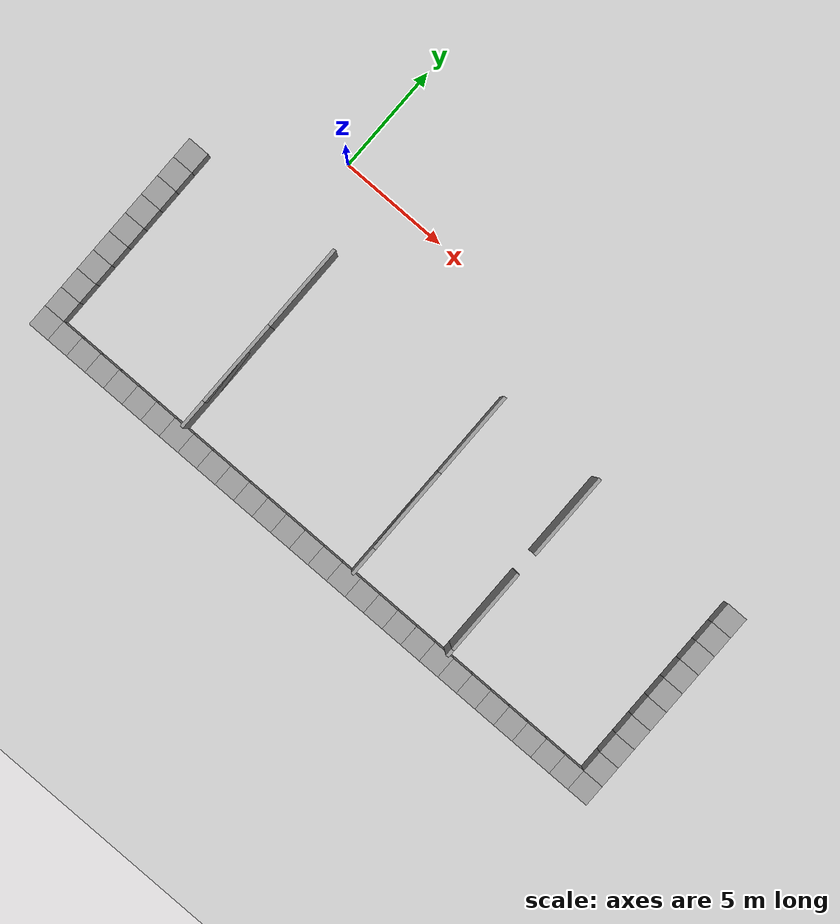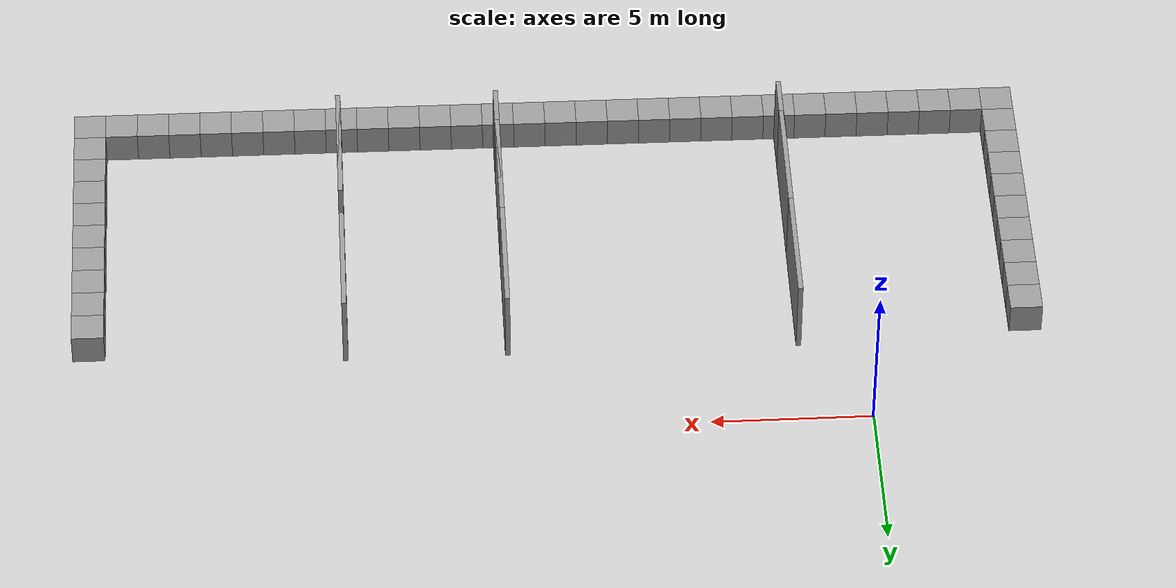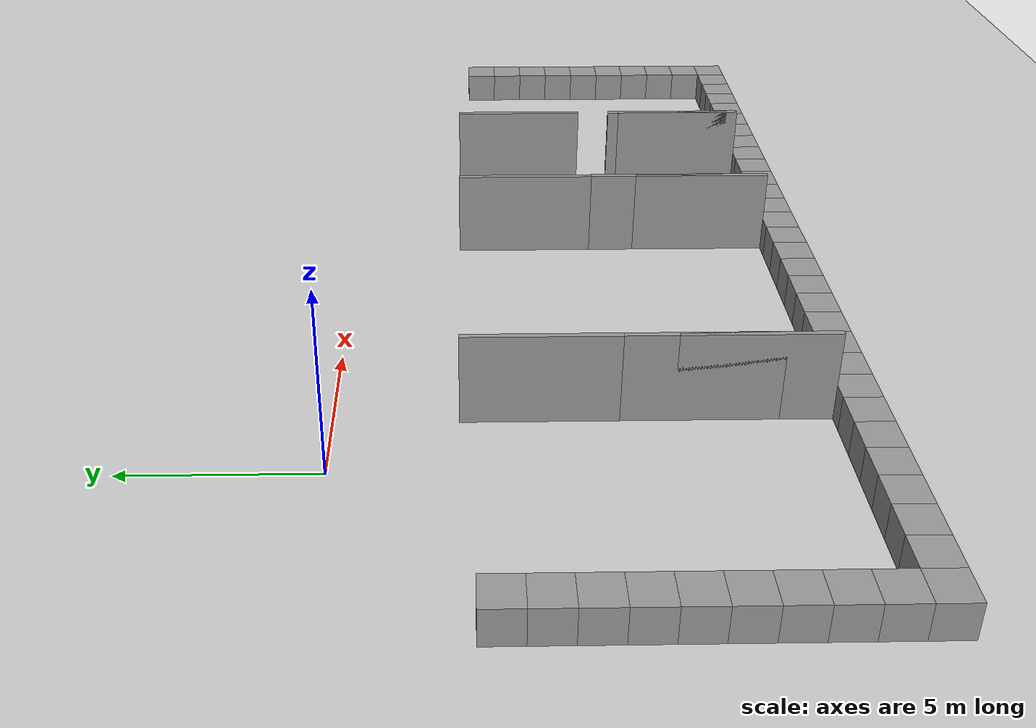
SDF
<sdf version="1.6">
 <world name="default">
  <model name="ground_plane">
   <static>1</static>
   <link name="link">
    <collision name="collision">
     <geometry><plane><normal>0 0 1</normal><size>100 100</size></plane></geometry>
     <surface><friction><ode><mu>100</mu><mu2>50</mu2></ode></friction></surface>
    </collision>
    <visual name="visual">
     <cast_shadows>0</cast_shadows>
     <geometry><plane><normal>0 0 1</normal><size>100 100</size></plane></geometry>
     <material>
      <script><uri>file://media/materials/scripts/gazebo.material</uri><name>Gazebo/Grey</name></script>
     </material>
    </visual>
    <velocity_decay><linear>0</linear><angular>0</angular></velocity_decay>
   </link>
  </model>
  <model name="unit_box_206">
   <pose>24 -3.99999 0.5 0 0 -1e-06</pose>
   <static>1</static>
   <link name="link">
    <inertial>
     <mass>1</mass>
     <inertia><ixx>1</ixx><ixy>0</ixy><ixz>0</ixz><iyy>1</iyy><iyz>0</iyz><izz>1</izz></inertia>
    </inertial>
    <collision name="collision"><geometry><box><size>1 1 1</size></box></geometry></collision>
    <visual name="visual">
     <geometry><box><size>1 1 1</size></box></geometry>
     <material>
      <script><uri>file://media/materials/scripts/gazebo.material</uri><name>Gazebo/Grey</name></script>
     </material>
    </visual>
    <velocity_decay><linear>0</linear><angular>0</angular></velocity_decay>
   </link>
   <static>1</static>
  </model>
  <model name="unit_box_207">
   <pose>24 -4.99999 0.5 0 0 -1e-06</pose>
   <static>1</static>
   <link name="link">
    <inertial>
     <mass>1</mass>
     <inertia><ixx>1</ixx><ixy>0</ixy><ixz>0</ixz><iyy>1</iyy><iyz>0</iyz><izz>1</izz></inertia>
    </inertial>
    <collision name="collision"><geometry><box><size>1 1 1</size></box></geometry></collision>
    <visual name="visual">
     <geometry><box><size>1 1 1</size></box></geometry>
     <material>
      <script><uri>file://media/materials/scripts/gazebo.material</uri><name>Gazebo/Grey</name></script>
     </material>
    </visual>
    <velocity_decay><linear>0</linear><angular>0</angular></velocity_decay>
   </link>
   <static>1</static>
  </model>
  <model name="unit_box_208">
   <pose>24 -6 0.5 0 0 -2e-06</pose>
   <static>1</static>
   <link name="link">
    <inertial>
     <mass>1</mass>
     <inertia><ixx>1</ixx><ixy>0</ixy><ixz>0</ixz><iyy>1</iyy><iyz>0</iyz><izz>1</izz></inertia>
    </inertial>
    <collision name="collision"><geometry><box><size>1 1 1</size></box></geometry></collision>
    <visual name="visual">
     <geometry><box><size>1 1 1</size></box></geometry>
     <material>
      <script><uri>file://media/materials/scripts/gazebo.material</uri><name>Gazebo/Grey</name></script>
     </material>
    </visual>
    <velocity_decay><linear>0</linear><angular>0</angular></velocity_decay>
   </link>
   <static>1</static>
  </model>
  <model name="unit_box_215">
   <pose>24 -7 0.5 0 0 -2e-06</pose>
   <static>1</static>
   <link name="link">
    <inertial>
     <mass>1</mass>
     <inertia><ixx>1</ixx><ixy>0</ixy><ixz>0</ixz><iyy>1</iyy><iyz>0</iyz><izz>1</izz></inertia>
    </inertial>
    <collision name="collision"><geometry><box><size>1 1 1</size></box></geometry></collision>
    <visual name="visual">
     <geometry><box><size>1 1 1</size></box></geometry>
     <material>
      <script><uri>file://media/materials/scripts/gazebo.material</uri><name>Gazebo/Grey</name></script>
     </material>
    </visual>
    <velocity_decay><linear>0</linear><angular>0</angular></velocity_decay>
   </link>
   <static>1</static>
  </model>
  <model name="unit_box_216">
   <pose>24 -8 0.5 0 0 -3e-06</pose>
   <static>1</static>
   <link name="link">
    <inertial>
     <mass>1</mass>
     <inertia><ixx>1</ixx><ixy>0</ixy><ixz>0</ixz><iyy>1</iyy><iyz>0</iyz><izz>1</izz></inertia>
    </inertial>
    <collision name="collision"><geometry><box><size>1 1 1</size></box></geometry></collision>
    <visual name="visual">
     <geometry><box><size>1 1 1</size></box></geometry>
     <material>
      <script><uri>file://media/materials/scripts/gazebo.material</uri><name>Gazebo/Grey</name></script>
     </material>
    </visual>
    <velocity_decay><linear>0</linear><angular>0</angular></velocity_decay>
   </link>
   <static>1</static>
  </model>
  <model name="unit_box_241">
   <pose>-5 -4 0.5 0 0 0</pose>
   <static>1</static>
   <link name="link">
    <inertial>
     <mass>1</mass>
     <inertia><ixx>1</ixx><ixy>0</ixy><ixz>0</ixz><iyy>1</iyy><iyz>0</iyz><izz>1</izz></inertia>
    </inertial>
    <collision name="collision"><geometry><box><size>1 1 1</size></box></geometry></collision>
    <visual name="visual">
     <geometry><box><size>1 1 1</size></box></geometry>
     <material>
      <script><uri>file://media/materials/scripts/gazebo.material</uri><name>Gazebo/Grey</name></script>
     </material>
    </visual>
    <velocity_decay><linear>0</linear><angular>0</angular></velocity_decay>
   </link>
   <static>1</static>
  </model>
  <model name="unit_box_251">
   <pose>-4.00002 -13 0.5 0 -1e-06 -1.2e-05</pose>
   <static>1</static>
   <link name="link">
    <inertial>
     <mass>1</mass>
     <inertia><ixx>1</ixx><ixy>0</ixy><ixz>0</ixz><iyy>1</iyy><iyz>0</iyz><izz>1</izz></inertia>
    </inertial>
    <collision name="collision"><geometry><box><size>1 1 1</size></box></geometry></collision>
    <visual name="visual">
     <geometry><box><size>1 1 1</size></box></geometry>
     <material>
      <script><uri>file://media/materials/scripts/gazebo.material</uri><name>Gazebo/Grey</name></script>
     </material>
    </visual>
    <velocity_decay><linear>0</linear><angular>0</angular></velocity_decay>
   </link>
   <static>1</static>
  </model>
  <model name="unit_box_252">
   <pose>-3.00002 -13 0.5 0 0 -1.1e-05</pose>
   <static>1</static>
   <link name="link">
    <inertial>
     <mass>1</mass>
     <inertia><ixx>1</ixx><ixy>0</ixy><ixz>0</ixz><iyy>1</iyy><iyz>0</iyz><izz>1</izz></inertia>
    </inertial>
    <collision name="collision"><geometry><box><size>1 1 1</size></box></geometry></collision>
    <visual name="visual">
     <geometry><box><size>1 1 1</size></box></geometry>
     <material>
      <script><uri>file://media/materials/scripts/gazebo.material</uri><name>Gazebo/Grey</name></script>
     </material>
    </visual>
    <velocity_decay><linear>0</linear><angular>0</angular></velocity_decay>
   </link>
   <static>1</static>
  </model>
  <model name="unit_box_253">
   <pose>-2.00001 -13 0.5 0 0 -1e-05</pose>
   <static>1</static>
   <link name="link">
    <inertial>
     <mass>1</mass>
     <inertia><ixx>1</ixx><ixy>0</ixy><ixz>0</ixz><iyy>1</iyy><iyz>0</iyz><izz>1</izz></inertia>
    </inertial>
    <collision name="collision"><geometry><box><size>1 1 1</size></box></geometry></collision>
    <visual name="visual">
     <geometry><box><size>1 1 1</size></box></geometry>
     <material>
      <script><uri>file://media/materials/scripts/gazebo.material</uri><name>Gazebo/Grey</name></script>
     </material>
    </visual>
    <velocity_decay><linear>0</linear><angular>0</angular></velocity_decay>
   </link>
   <static>1</static>
  </model>
  <model name="unit_box_254">
   <pose>-1.00001 -13 0.5 0 0 -1e-05</pose>
   <static>1</static>
   <link name="link">
    <inertial>
     <mass>1</mass>
     <inertia><ixx>1</ixx><ixy>0</ixy><ixz>0</ixz><iyy>1</iyy><iyz>0</iyz><izz>1</izz></inertia>
    </inertial>
    <collision name="collision"><geometry><box><size>1 1 1</size></box></geometry></collision>
    <visual name="visual">
     <geometry><box><size>1 1 1</size></box></geometry>
     <material>
      <script><uri>file://media/materials/scripts/gazebo.material</uri><name>Gazebo/Grey</name></script>
     </material>
    </visual>
    <velocity_decay><linear>0</linear><angular>0</angular></velocity_decay>
   </link>
   <static>1</static>
  </model>
  <model name="unit_box_255">
   <pose>-1.2e-05 -12.9999 0.5 0 0 -8e-06</pose>
   <static>1</static>
   <link name="link">
    <inertial>
     <mass>1</mass>
     <inertia><ixx>1</ixx><ixy>0</ixy><ixz>0</ixz><iyy>1</iyy><iyz>0</iyz><izz>1</izz></inertia>
    </inertial>
    <collision name="collision"><geometry><box><size>1 1 1</size></box></geometry></collision>
    <visual name="visual">
     <geometry><box><size>1 1 1</size></box></geometry>
     <material>
      <script><uri>file://media/materials/scripts/gazebo.material</uri><name>Gazebo/Grey</name></script>
     </material>
    </visual>
    <velocity_decay><linear>0</linear><angular>0</angular></velocity_decay>
   </link>
   <static>1</static>
  </model>
  <model name="unit_box_256">
   <pose>0.999991 -12.9999 0.5 0 0 -7e-06</pose>
   <static>1</static>
   <link name="link">
    <inertial>
     <mass>1</mass>
     <inertia><ixx>1</ixx><ixy>0</ixy><ixz>0</ixz><iyy>1</iyy><iyz>0</iyz><izz>1</izz></inertia>
    </inertial>
    <collision name="collision"><geometry><box><size>1 1 1</size></box></geometry></collision>
    <visual name="visual">
     <geometry><box><size>1 1 1</size></box></geometry>
     <material>
      <script><uri>file://media/materials/scripts/gazebo.material</uri><name>Gazebo/Grey</name></script>
     </material>
    </visual>
    <velocity_decay><linear>0</linear><angular>0</angular></velocity_decay>
   </link>
   <static>1</static>
  </model>
  <model name="unit_box_257">
   <pose>1.99999 -12.9999 0.5 0 0 -7e-06</pose>
   <static>1</static>
   <link name="link">
    <inertial>
     <mass>1</mass>
     <inertia><ixx>1</ixx><ixy>0</ixy><ixz>0</ixz><iyy>1</iyy><iyz>0</iyz><izz>1</izz></inertia>
    </inertial>
    <collision name="collision"><geometry><box><size>1 1 1</size></box></geometry></collision>
    <visual name="visual">
     <geometry><box><size>1 1 1</size></box></geometry>
     <material>
      <script><uri>file://media/materials/scripts/gazebo.material</uri><name>Gazebo/Grey</name></script>
     </material>
    </visual>
    <velocity_decay><linear>0</linear><angular>0</angular></velocity_decay>
   </link>
   <static>1</static>
  </model>
  <model name="unit_box_258">
   <pose>2.99999 -12.9999 0.5 0 0 -5e-06</pose>
   <static>1</static>
   <link name="link">
    <inertial>
     <mass>1</mass>
     <inertia><ixx>1</ixx><ixy>0</ixy><ixz>0</ixz><iyy>1</iyy><iyz>0</iyz><izz>1</izz></inertia>
    </inertial>
    <collision name="collision"><geometry><box><size>1 1 1</size></box></geometry></collision>
    <visual name="visual">
     <geometry><box><size>1 1 1</size></box></geometry>
     <material>
      <script><uri>file://media/materials/scripts/gazebo.material</uri><name>Gazebo/Grey</name></script>
     </material>
    </visual>
    <velocity_decay><linear>0</linear><angular>0</angular></velocity_decay>
   </link>
   <static>1</static>
  </model>
  <model name="unit_box_259">
   <pose>4 -13 0.5 0 0 -5e-06</pose>
   <static>1</static>
   <link name="link">
    <inertial>
     <mass>1</mass>
     <inertia><ixx>1</ixx><ixy>0</ixy><ixz>0</ixz><iyy>1</iyy><iyz>0</iyz><izz>1</izz></inertia>
    </inertial>
    <collision name="collision"><geometry><box><size>1 1 1</size></box></geometry></collision>
    <visual name="visual">
     <geometry><box><size>1 1 1</size></box></geometry>
     <material>
      <script><uri>file://media/materials/scripts/gazebo.material</uri><name>Gazebo/Grey</name></script>
     </material>
    </visual>
    <velocity_decay><linear>0</linear><angular>0</angular></velocity_decay>
   </link>
   <static>1</static>
  </model>
  <model name="unit_box_260">
   <pose>5 -12.9999 0.499989 -3e-06 0 -7e-06</pose>
   <static>1</static>
   <link name="link">
    <inertial>
     <mass>1</mass>
     <inertia><ixx>1</ixx><ixy>0</ixy><ixz>0</ixz><iyy>1</iyy><iyz>0</iyz><izz>1</izz></inertia>
    </inertial>
    <collision name="collision"><geometry><box><size>1 1 1</size></box></geometry></collision>
    <visual name="visual">
     <geometry><box><size>1 1 1</size></box></geometry>
     <material>
      <script><uri>file://media/materials/scripts/gazebo.material</uri><name>Gazebo/Grey</name></script>
     </material>
    </visual>
    <velocity_decay><linear>0</linear><angular>0</angular></velocity_decay>
   </link>
   <static>1</static>
  </model>
  <model name="unit_box_261">
   <pose>6 -13 0.500001 2e-06 0 -7e-06</pose>
   <static>1</static>
   <link name="link">
    <inertial>
     <mass>1</mass>
     <inertia><ixx>1</ixx><ixy>0</ixy><ixz>0</ixz><iyy>1</iyy><iyz>0</iyz><izz>1</izz></inertia>
    </inertial>
    <collision name="collision"><geometry><box><size>1 1 1</size></box></geometry></collision>
    <visual name="visual">
     <geometry><box><size>1 1 1</size></box></geometry>
     <material>
      <script><uri>file://media/materials/scripts/gazebo.material</uri><name>Gazebo/Grey</name></script>
     </material>
    </visual>
    <velocity_decay><linear>0</linear><angular>0</angular></velocity_decay>
   </link>
   <static>1</static>
  </model>
  <model name="unit_box_262">
   <pose>7 -13 0.5 0 0 -1.1e-05</pose>
   <static>1</static>
   <link name="link">
    <inertial>
     <mass>1</mass>
     <inertia><ixx>1</ixx><ixy>0</ixy><ixz>0</ixz><iyy>1</iyy><iyz>0</iyz><izz>1</izz></inertia>
    </inertial>
    <collision name="collision"><geometry><box><size>1 1 1</size></box></geometry></collision>
    <visual name="visual">
     <geometry><box><size>1 1 1</size></box></geometry>
     <material>
      <script><uri>file://media/materials/scripts/gazebo.material</uri><name>Gazebo/Grey</name></script>
     </material>
    </visual>
    <velocity_decay><linear>0</linear><angular>0</angular></velocity_decay>
   </link>
   <static>1</static>
  </model>
  <model name="unit_box_263">
   <pose>8 -13 0.499998 3e-06 0 -1.1e-05</pose>
   <static>1</static>
   <link name="link">
    <inertial>
     <mass>1</mass>
     <inertia><ixx>1</ixx><ixy>0</ixy><ixz>0</ixz><iyy>1</iyy><iyz>0</iyz><izz>1</izz></inertia>
    </inertial>
    <collision name="collision"><geometry><box><size>1 1 1</size></box></geometry></collision>
    <visual name="visual">
     <geometry><box><size>1 1 1</size></box></geometry>
     <material>
      <script><uri>file://media/materials/scripts/gazebo.material</uri><name>Gazebo/Grey</name></script>
     </material>
    </visual>
    <velocity_decay><linear>0</linear><angular>0</angular></velocity_decay>
   </link>
   <static>1</static>
  </model>
  <model name="unit_box_264">
   <pose>9 -13 0.5 0 0 -1.1e-05</pose>
   <static>1</static>
   <link name="link">
    <inertial>
     <mass>1</mass>
     <inertia><ixx>1</ixx><ixy>0</ixy><ixz>0</ixz><iyy>1</iyy><iyz>0</iyz><izz>1</izz></inertia>
    </inertial>
    <collision name="collision"><geometry><box><size>1 1 1</size></box></geometry></collision>
    <visual name="visual">
     <geometry><box><size>1 1 1</size></box></geometry>
     <material>
      <script><uri>file://media/materials/scripts/gazebo.material</uri><name>Gazebo/Grey</name></script>
     </material>
    </visual>
    <velocity_decay><linear>0</linear><angular>0</angular></velocity_decay>
   </link>
   <static>1</static>
  </model>
  <model name="unit_box_265">
   <pose>10 -13 0.500001 2e-06 0 -1.1e-05</pose>
   <static>1</static>
   <link name="link">
    <inertial>
     <mass>1</mass>
     <inertia><ixx>1</ixx><ixy>0</ixy><ixz>0</ixz><iyy>1</iyy><iyz>0</iyz><izz>1</izz></inertia>
    </inertial>
    <collision name="collision"><geometry><box><size>1 1 1</size></box></geometry></collision>
    <visual name="visual">
     <geometry><box><size>1 1 1</size></box></geometry>
     <material>
      <script><uri>file://media/materials/scripts/gazebo.material</uri><name>Gazebo/Grey</name></script>
     </material>
    </visual>
    <velocity_decay><linear>0</linear><angular>0</angular></velocity_decay>
   </link>
   <static>1</static>
  </model>
  <model name="unit_box_266">
   <pose>11 -13 0.499992 1e-06 0 -8e-06</pose>
   <static>1</static>
   <link name="link">
    <inertial>
     <mass>1</mass>
     <inertia><ixx>1</ixx><ixy>0</ixy><ixz>0</ixz><iyy>1</iyy><iyz>0</iyz><izz>1</izz></inertia>
    </inertial>
    <collision name="collision"><geometry><box><size>1 1 1</size></box></geometry></collision>
    <visual name="visual">
     <geometry><box><size>1 1 1</size></box></geometry>
     <material>
      <script><uri>file://media/materials/scripts/gazebo.material</uri><name>Gazebo/Grey</name></script>
     </material>
    </visual>
    <velocity_decay><linear>0</linear><angular>0</angular></velocity_decay>
   </link>
   <static>1</static>
  </model>
  <model name="unit_box_267">
   <pose>12 -13 0.5 0 0 -8e-06</pose>
   <static>1</static>
   <link name="link">
    <inertial>
     <mass>1</mass>
     <inertia><ixx>1</ixx><ixy>0</ixy><ixz>0</ixz><iyy>1</iyy><iyz>0</iyz><izz>1</izz></inertia>
    </inertial>
    <collision name="collision"><geometry><box><size>1 1 1</size></box></geometry></collision>
    <visual name="visual">
     <geometry><box><size>1 1 1</size></box></geometry>
     <material>
      <script><uri>file://media/materials/scripts/gazebo.material</uri><name>Gazebo/Grey</name></script>
     </material>
    </visual>
    <velocity_decay><linear>0</linear><angular>0</angular></velocity_decay>
   </link>
   <static>1</static>
  </model>
  <model name="unit_box_268">
   <pose>13 -13 0.500001 1e-06 0 -7e-06</pose>
   <static>1</static>
   <link name="link">
    <inertial>
     <mass>1</mass>
     <inertia><ixx>1</ixx><ixy>0</ixy><ixz>0</ixz><iyy>1</iyy><iyz>0</iyz><izz>1</izz></inertia>
    </inertial>
    <collision name="collision"><geometry><box><size>1 1 1</size></box></geometry></collision>
    <visual name="visual">
     <geometry><box><size>1 1 1</size></box></geometry>
     <material>
      <script><uri>file://media/materials/scripts/gazebo.material</uri><name>Gazebo/Grey</name></script>
     </material>
    </visual>
    <velocity_decay><linear>0</linear><angular>0</angular></velocity_decay>
   </link>
   <static>1</static>
  </model>
  <model name="unit_box_269">
   <pose>14 -13 0.5 0 0 -1e-05</pose>
   <static>1</static>
   <link name="link">
    <inertial>
     <mass>1</mass>
     <inertia><ixx>1</ixx><ixy>0</ixy><ixz>0</ixz><iyy>1</iyy><iyz>0</iyz><izz>1</izz></inertia>
    </inertial>
    <collision name="collision"><geometry><box><size>1 1 1</size></box></geometry></collision>
    <visual name="visual">
     <geometry><box><size>1 1 1</size></box></geometry>
     <material>
      <script><uri>file://media/materials/scripts/gazebo.material</uri><name>Gazebo/Grey</name></script>
     </material>
    </visual>
    <velocity_decay><linear>0</linear><angular>0</angular></velocity_decay>
   </link>
   <static>1</static>
  </model>
  <model name="unit_box_274">
   <pose>24 -9 0.5 0 0 -6e-06</pose>
   <static>1</static>
   <link name="link">
    <inertial>
     <mass>1</mass>
     <inertia><ixx>1</ixx><ixy>0</ixy><ixz>0</ixz><iyy>1</iyy><iyz>0</iyz><izz>1</izz></inertia>
    </inertial>
    <collision name="collision"><geometry><box><size>1 1 1</size></box></geometry></collision>
    <visual name="visual">
     <geometry><box><size>1 1 1</size></box></geometry>
     <material>
      <script><uri>file://media/materials/scripts/gazebo.material</uri><name>Gazebo/Grey</name></script>
     </material>
    </visual>
    <velocity_decay><linear>0</linear><angular>0</angular></velocity_decay>
   </link>
   <static>1</static>
  </model>
  <model name="unit_box_275">
   <pose>24 -10 0.5 0 0 -6e-06</pose>
   <static>1</static>
   <link name="link">
    <inertial>
     <mass>1</mass>
     <inertia><ixx>1</ixx><ixy>0</ixy><ixz>0</ixz><iyy>1</iyy><iyz>0</iyz><izz>1</izz></inertia>
    </inertial>
    <collision name="collision"><geometry><box><size>1 1 1</size></box></geometry></collision>
    <visual name="visual">
     <geometry><box><size>1 1 1</size></box></geometry>
     <material>
      <script><uri>file://media/materials/scripts/gazebo.material</uri><name>Gazebo/Grey</name></script>
     </material>
    </visual>
    <velocity_decay><linear>0</linear><angular>0</angular></velocity_decay>
   </link>
   <static>1</static>
  </model>
  <model name="unit_box_276">
   <pose>24 -11 0.5 0 0 -4e-06</pose>
   <static>1</static>
   <link name="link">
    <inertial>
     <mass>1</mass>
     <inertia><ixx>1</ixx><ixy>0</ixy><ixz>0</ixz><iyy>1</iyy><iyz>0</iyz><izz>1</izz></inertia>
    </inertial>
    <collision name="collision"><geometry><box><size>1 1 1</size></box></geometry></collision>
    <visual name="visual">
     <geometry><box><size>1 1 1</size></box></geometry>
     <material>
      <script><uri>file://media/materials/scripts/gazebo.material</uri><name>Gazebo/Grey</name></script>
     </material>
    </visual>
    <velocity_decay><linear>0</linear><angular>0</angular></velocity_decay>
   </link>
   <static>1</static>
  </model>
  <model name="unit_box_277">
   <pose>24 -12 0.5 0 0 -4e-06</pose>
   <static>1</static>
   <link name="link">
    <inertial>
     <mass>1</mass>
     <inertia><ixx>1</ixx><ixy>0</ixy><ixz>0</ixz><iyy>1</iyy><iyz>0</iyz><izz>1</izz></inertia>
    </inertial>
    <collision name="collision"><geometry><box><size>1 1 1</size></box></geometry></collision>
    <visual name="visual">
     <geometry><box><size>1 1 1</size></box></geometry>
     <material>
      <script><uri>file://media/materials/scripts/gazebo.material</uri><name>Gazebo/Grey</name></script>
     </material>
    </visual>
    <velocity_decay><linear>0</linear><angular>0</angular></velocity_decay>
   </link>
   <static>1</static>
  </model>
  <model name="unit_box_278">
   <pose>15 -13 0.499998 -1e-06 5e-06 -1e-05</pose>
   <static>1</static>
   <link name="link">
    <inertial>
     <mass>1</mass>
     <inertia><ixx>1</ixx><ixy>0</ixy><ixz>0</ixz><iyy>1</iyy><iyz>0</iyz><izz>1</izz></inertia>
    </inertial>
    <collision name="collision"><geometry><box><size>1 1 1</size></box></geometry></collision>
    <visual name="visual">
     <geometry><box><size>1 1 1</size></box></geometry>
     <material>
      <script><uri>file://media/materials/scripts/gazebo.material</uri><name>Gazebo/Grey</name></script>
     </material>
    </visual>
    <velocity_decay><linear>0</linear><angular>0</angular></velocity_decay>
   </link>
   <static>1</static>
  </model>
  <model name="unit_box_279">
   <pose>16 -13 0.49999 0 0 -1e-05</pose>
   <static>1</static>
   <link name="link">
    <inertial>
     <mass>1</mass>
     <inertia><ixx>1</ixx><ixy>0</ixy><ixz>0</ixz><iyy>1</iyy><iyz>0</iyz><izz>1</izz></inertia>
    </inertial>
    <collision name="collision"><geometry><box><size>1 1 1</size></box></geometry></collision>
    <visual name="visual">
     <geometry><box><size>1 1 1</size></box></geometry>
     <material>
      <script><uri>file://media/materials/scripts/gazebo.material</uri><name>Gazebo/Grey</name></script>
     </material>
    </visual>
    <velocity_decay><linear>0</linear><angular>0</angular></velocity_decay>
   </link>
   <static>1</static>
  </model>
  <model name="unit_box_280">
   <pose>17 -13 0.5 -1e-06 0 -1.1e-05</pose>
   <static>1</static>
   <link name="link">
    <inertial>
     <mass>1</mass>
     <inertia><ixx>1</ixx><ixy>0</ixy><ixz>0</ixz><iyy>1</iyy><iyz>0</iyz><izz>1</izz></inertia>
    </inertial>
    <collision name="collision"><geometry><box><size>1 1 1</size></box></geometry></collision>
    <visual name="visual">
     <geometry><box><size>1 1 1</size></box></geometry>
     <material>
      <script><uri>file://media/materials/scripts/gazebo.material</uri><name>Gazebo/Grey</name></script>
     </material>
    </visual>
    <velocity_decay><linear>0</linear><angular>0</angular></velocity_decay>
   </link>
   <static>1</static>
  </model>
  <model name="unit_box_281">
   <pose>18 -13 0.5 0 0 -1.1e-05</pose>
   <static>1</static>
   <link name="link">
    <inertial>
     <mass>1</mass>
     <inertia><ixx>1</ixx><ixy>0</ixy><ixz>0</ixz><iyy>1</iyy><iyz>0</iyz><izz>1</izz></inertia>
    </inertial>
    <collision name="collision"><geometry><box><size>1 1 1</size></box></geometry></collision>
    <visual name="visual">
     <geometry><box><size>1 1 1</size></box></geometry>
     <material>
      <script><uri>file://media/materials/scripts/gazebo.material</uri><name>Gazebo/Grey</name></script>
     </material>
    </visual>
    <velocity_decay><linear>0</linear><angular>0</angular></velocity_decay>
   </link>
   <static>1</static>
  </model>
  <model name="unit_box_282">
   <pose>19 -13 0.5 0 0 -9e-06</pose>
   <static>1</static>
   <link name="link">
    <inertial>
     <mass>1</mass>
     <inertia><ixx>1</ixx><ixy>0</ixy><ixz>0</ixz><iyy>1</iyy><iyz>0</iyz><izz>1</izz></inertia>
    </inertial>
    <collision name="collision"><geometry><box><size>1 1 1</size></box></geometry></collision>
    <visual name="visual">
     <geometry><box><size>1 1 1</size></box></geometry>
     <material>
      <script><uri>file://media/materials/scripts/gazebo.material</uri><name>Gazebo/Grey</name></script>
     </material>
    </visual>
    <velocity_decay><linear>0</linear><angular>0</angular></velocity_decay>
   </link>
   <static>1</static>
  </model>
  <model name="unit_box_283">
   <pose>20 -13 0.5 0 0 -9e-06</pose>
   <static>1</static>
   <link name="link">
    <inertial>
     <mass>1</mass>
     <inertia><ixx>1</ixx><ixy>0</ixy><ixz>0</ixz><iyy>1</iyy><iyz>0</iyz><izz>1</izz></inertia>
    </inertial>
    <collision name="collision"><geometry><box><size>1 1 1</size></box></geometry></collision>
    <visual name="visual">
     <geometry><box><size>1 1 1</size></box></geometry>
     <material>
      <script><uri>file://media/materials/scripts/gazebo.material</uri><name>Gazebo/Grey</name></script>
     </material>
    </visual>
    <velocity_decay><linear>0</linear><angular>0</angular></velocity_decay>
   </link>
   <static>1</static>
  </model>
  <model name="unit_box_284">
   <pose>21 -13 0.5 0 0 -6e-06</pose>
   <static>1</static>
   <link name="link">
    <inertial>
     <mass>1</mass>
     <inertia><ixx>1</ixx><ixy>0</ixy><ixz>0</ixz><iyy>1</iyy><iyz>0</iyz><izz>1</izz></inertia>
    </inertial>
    <collision name="collision"><geometry><box><size>1 1 1</size></box></geometry></collision>
    <visual name="visual">
     <geometry><box><size>1 1 1</size></box></geometry>
     <material>
      <script><uri>file://media/materials/scripts/gazebo.material</uri><name>Gazebo/Grey</name></script>
     </material>
    </visual>
    <velocity_decay><linear>0</linear><angular>0</angular></velocity_decay>
   </link>
   <static>1</static>
  </model>
  <model name="unit_box_285">
   <pose>22 -13 0.5 1e-06 0 -6e-06</pose>
   <static>1</static>
   <link name="link">
    <inertial>
     <mass>1</mass>
     <inertia><ixx>1</ixx><ixy>0</ixy><ixz>0</ixz><iyy>1</iyy><iyz>0</iyz><izz>1</izz></inertia>
    </inertial>
    <collision name="collision"><geometry><box><size>1 1 1</size></box></geometry></collision>
    <visual name="visual">
     <geometry><box><size>1 1 1</size></box></geometry>
     <material>
      <script><uri>file://media/materials/scripts/gazebo.material</uri><name>Gazebo/Grey</name></script>
     </material>
    </visual>
    <velocity_decay><linear>0</linear><angular>0</angular></velocity_decay>
   </link>
   <static>1</static>
  </model>
  <model name="unit_box_286">
   <pose>23 -13 0.5 0 0 -6e-06</pose>
   <static>1</static>
   <link name="link">
    <inertial>
     <mass>1</mass>
     <inertia><ixx>1</ixx><ixy>0</ixy><ixz>0</ixz><iyy>1</iyy><iyz>0</iyz><izz>1</izz></inertia>
    </inertial>
    <collision name="collision"><geometry><box><size>1 1 1</size></box></geometry></collision>
    <visual name="visual">
     <geometry><box><size>1 1 1</size></box></geometry>
     <material>
      <script><uri>file://media/materials/scripts/gazebo.material</uri><name>Gazebo/Grey</name></script>
     </material>
    </visual>
    <velocity_decay><linear>0</linear><angular>0</angular></velocity_decay>
   </link>
   <static>1</static>
  </model>
  <model name="unit_box_287">
   <pose>24 -13 0.5 0 0 -5e-06</pose>
   <static>1</static>
   <link name="link">
    <inertial>
     <mass>1</mass>
     <inertia><ixx>1</ixx><ixy>0</ixy><ixz>0</ixz><iyy>1</iyy><iyz>0</iyz><izz>1</izz></inertia>
    </inertial>
    <collision name="collision"><geometry><box><size>1 1 1</size></box></geometry></collision>
    <visual name="visual">
     <geometry><box><size>1 1 1</size></box></geometry>
     <material>
      <script><uri>file://media/materials/scripts/gazebo.material</uri><name>Gazebo/Grey</name></script>
     </material>
    </visual>
    <velocity_decay><linear>0</linear><angular>0</angular></velocity_decay>
   </link>
   <static>1</static>
  </model>
  <model name="unit_box_1_0">
   <pose>-5.0 -5.0 0.5 0 0 0</pose>
   <link name="link">
    <inertial>
     <mass>1</mass>
     <inertia><ixx>1</ixx><ixy>0</ixy><ixz>0</ixz><iyy>1</iyy><iyz>0</iyz><izz>1</izz></inertia>
    </inertial>
    <collision name="collision"><geometry><box><size>1 1 1</size></box></geometry></collision>
    <visual name="visual">
     <geometry><box><size>1 1 1</size></box></geometry>
     <material>
      <script><uri>file://media/materials/scripts/gazebo.material</uri><name>Gazebo/Grey</name></script>
     </material>
    </visual>
    <velocity_decay><linear>0</linear><angular>0</angular></velocity_decay>
   </link>
   <static>1</static>
  </model>
  <model name="unit_box_2_0">
   <pose>-5 -6 0.5 0 0 0</pose>
   <link name="link">
    <inertial>
     <mass>1</mass>
     <inertia><ixx>1</ixx><ixy>0</ixy><ixz>0</ixz><iyy>1</iyy><iyz>0</iyz><izz>1</izz></inertia>
    </inertial>
    <collision name="collision"><geometry><box><size>1 1 1</size></box></geometry></collision>
    <visual name="visual">
     <geometry><box><size>1 1 1</size></box></geometry>
     <material>
      <script><uri>file://media/materials/scripts/gazebo.material</uri><name>Gazebo/Grey</name></script>
     </material>
    </visual>
    <velocity_decay><linear>0</linear><angular>0</angular></velocity_decay>
   </link>
   <static>1</static>
  </model>
  <model name="unit_box_3_0">
   <pose>-5 -7 0.5 0 0 0</pose>
   <link name="link">
    <inertial>
     <mass>1</mass>
     <inertia><ixx>1</ixx><ixy>0</ixy><ixz>0</ixz><iyy>1</iyy><iyz>0</iyz><izz>1</izz></inertia>
    </inertial>
    <collision name="collision"><geometry><box><size>1 1 1</size></box></geometry></collision>
    <visual name="visual">
     <geometry><box><size>1 1 1</size></box></geometry>
     <material>
      <script><uri>file://media/materials/scripts/gazebo.material</uri><name>Gazebo/Grey</name></script>
     </material>
    </visual>
    <velocity_decay><linear>0</linear><angular>0</angular></velocity_decay>
   </link>
   <static>1</static>
  </model>
  <model name="unit_box_4_0">
   <pose>-5 -8 0.5 0 0 0</pose>
   <link name="link">
    <inertial>
     <mass>1</mass>
     <inertia><ixx>1</ixx><ixy>0</ixy><ixz>0</ixz><iyy>1</iyy><iyz>0</iyz><izz>1</izz></inertia>
    </inertial>
    <collision name="collision"><geometry><box><size>1 1 1</size></box></geometry></collision>
    <visual name="visual">
     <geometry><box><size>1 1 1</size></box></geometry>
     <material>
      <script><uri>file://media/materials/scripts/gazebo.material</uri><name>Gazebo/Grey</name></script>
     </material>
    </visual>
    <velocity_decay><linear>0</linear><angular>0</angular></velocity_decay>
   </link>
   <static>1</static>
  </model>
  <model name="unit_box_5_0">
   <pose>-5 -9 0.5 0 0 0</pose>
   <link name="link">
    <inertial>
     <mass>1</mass>
     <inertia><ixx>1</ixx><ixy>0</ixy><ixz>0</ixz><iyy>1</iyy><iyz>0</iyz><izz>1</izz></inertia>
    </inertial>
    <collision name="collision"><geometry><box><size>1 1 1</size></box></geometry></collision>
    <visual name="visual">
     <geometry><box><size>1 1 1</size></box></geometry>
     <material>
      <script><uri>file://media/materials/scripts/gazebo.material</uri><name>Gazebo/Grey</name></script>
     </material>
    </visual>
    <velocity_decay><linear>0</linear><angular>0</angular></velocity_decay>
   </link>
   <static>1</static>
  </model>
  <model name="unit_box_6_0">
   <pose>-5 -10 0.5 0 0 0</pose>
   <link name="link">
    <inertial>
     <mass>1</mass>
     <inertia><ixx>1</ixx><ixy>0</ixy><ixz>0</ixz><iyy>1</iyy><iyz>0</iyz><izz>1</izz></inertia>
    </inertial>
    <collision name="collision"><geometry><box><size>1 1 1</size></box></geometry></collision>
    <visual name="visual">
     <geometry><box><size>1 1 1</size></box></geometry>
     <material>
      <script><uri>file://media/materials/scripts/gazebo.material</uri><name>Gazebo/Grey</name></script>
     </material>
    </visual>
    <velocity_decay><linear>0</linear><angular>0</angular></velocity_decay>
   </link>
   <static>1</static>
  </model>
  <model name="unit_box_7_0">
   <pose>-5 -11 0.5 0 0 0</pose>
   <link name="link">
    <inertial>
     <mass>1</mass>
     <inertia><ixx>1</ixx><ixy>0</ixy><ixz>0</ixz><iyy>1</iyy><iyz>0</iyz><izz>1</izz></inertia>
    </inertial>
    <collision name="collision"><geometry><box><size>1 1 1</size></box></geometry></collision>
    <visual name="visual">
     <geometry><box><size>1 1 1</size></box></geometry>
     <material>
      <script><uri>file://media/materials/scripts/gazebo.material</uri><name>Gazebo/Grey</name></script>
     </material>
    </visual>
    <velocity_decay><linear>0</linear><angular>0</angular></velocity_decay>
   </link>
   <static>1</static>
  </model>
  <model name="unit_box_8_0">
   <pose>-5 -12 0.5 0 0 0</pose>
   <link name="link">
    <inertial>
     <mass>1</mass>
     <inertia><ixx>1</ixx><ixy>0</ixy><ixz>0</ixz><iyy>1</iyy><iyz>0</iyz><izz>1</izz></inertia>
    </inertial>
    <collision name="collision"><geometry><box><size>1 1 1</size></box></geometry></collision>
    <visual name="visual">
     <geometry><box><size>1 1 1</size></box></geometry>
     <material>
      <script><uri>file://media/materials/scripts/gazebo.material</uri><name>Gazebo/Grey</name></script>
     </material>
    </visual>
    <velocity_decay><linear>0</linear><angular>0</angular></velocity_decay>
   </link>
   <static>1</static>
  </model>
  <model name="unit_box_9_0">
   <pose>-5 -13 0.5 0 0 0</pose>
   <link name="link">
    <inertial>
     <mass>1</mass>
     <inertia><ixx>1</ixx><ixy>0</ixy><ixz>0</ixz><iyy>1</iyy><iyz>0</iyz><izz>1</izz></inertia>
    </inertial>
    <collision name="collision"><geometry><box><size>1 1 1</size></box></geometry></collision>
    <visual name="visual">
     <geometry><box><size>1 1 1</size></box></geometry>
     <material>
      <script><uri>file://media/materials/scripts/gazebo.material</uri><name>Gazebo/Grey</name></script>
     </material>
    </visual>
    <velocity_decay><linear>0</linear><angular>0</angular></velocity_decay>
   </link>
   <static>1</static>
  </model>
  <model name="simple_wall_4x0.15_clone_3_clone_0">
   <pose>2.075 -5.15 0 0 0 -1.5707963267948</pose>
   <link name="Wall_0">
    <collision name="Wall_0_Collision">
     <geometry><box><size>4 0.15 2.5</size></box></geometry>
     <pose>0 0 1.25 0 0 0</pose>
    </collision>
    <visual name="Wall_0_Visual">
     <pose>0 0 1.25 0 0 0</pose>
     <geometry><box><size>4 0.15 2.5</size></box></geometry>
     <material>
      <script><uri>file://media/materials/scripts/gazebo.material</uri><name>Gazebo/Grey</name></script>
      <ambient>1 1 1 1</ambient>
     </material>
    </visual>
   </link>
   <static>1</static>
  </model>
  <model name="simple_wall_4x0.15_clone_3_clone_0_clone">
   <pose>2.075 -9.15 0 0 0 -1.5707963267948</pose>
   <link name="Wall_0">
    <collision name="Wall_0_Collision">
     <geometry><box><size>4 0.15 2.5</size></box></geometry>
     <pose>0 0 1.25 0 0 0</pose>
    </collision>
    <visual name="Wall_0_Visual">
     <pose>0 0 1.25 0 0 0</pose>
     <geometry><box><size>4 0.15 2.5</size></box></geometry>
     <material>
      <script><uri>file://media/materials/scripts/gazebo.material</uri><name>Gazebo/Grey</name></script>
      <ambient>1 1 1 1</ambient>
     </material>
    </visual>
   </link>
   <static>1</static>
  </model>
  <model name="simple_wall_4x0.15_clone_3_clone_0_clone_0">
   <pose>2.075 -10.5 0 0 0 -1.5707963267948</pose>
   <link name="Wall_0">
    <collision name="Wall_0_Collision">
     <geometry><box><size>4 0.15 2.5</size></box></geometry>
     <pose>0 0 1.25 0 0 0</pose>
    </collision>
    <visual name="Wall_0_Visual">
     <pose>0 0 1.25 0 0 0</pose>
     <geometry><box><size>4 0.15 2.5</size></box></geometry>
     <material>
      <script><uri>file://media/materials/scripts/gazebo.material</uri><name>Gazebo/Grey</name></script>
      <ambient>1 1 1 1</ambient>
     </material>
    </visual>
   </link>
   <static>1</static>
  </model>
  <model name="simple_wall_4x0.15_clone_3_clone_0_clone_1">
   <pose>11.075 -5.15 0 0 0 -1.5707963267948</pose>
   <link name="Wall_0">
    <collision name="Wall_0_Collision">
     <geometry><box><size>4 0.15 2.5</size></box></geometry>
     <pose>0 0 1.25 0 0 0</pose>
    </collision>
    <visual name="Wall_0_Visual">
     <pose>0 0 1.25 0 0 0</pose>
     <geometry><box><size>4 0.15 2.5</size></box></geometry>
     <material>
      <script><uri>file://media/materials/scripts/gazebo.material</uri><name>Gazebo/Grey</name></script>
      <ambient>1 1 1 1</ambient>
     </material>
    </visual>
   </link>
   <static>1</static>
  </model>
  <model name="simple_wall_4x0.15_clone_3_clone_0_clone_2">
   <pose>11.075 -9.15 0 0 0 -1.570796326794863267948</pose>
   <link name="Wall_0">
    <collision name="Wall_0_Collision">
     <geometry><box><size>4 0.15 2.5</size></box></geometry>
     <pose>0 0 1.25 0 0 0</pose>
    </collision>
    <visual name="Wall_0_Visual">
     <pose>0 0 1.25 0 0 0</pose>
     <geometry><box><size>4 0.15 2.5</size></box></geometry>
     <material>
      <script><uri>file://media/materials/scripts/gazebo.material</uri><name>Gazebo/Grey</name></script>
      <ambient>1 1 1 1</ambient>
     </material>
    </visual>
   </link>
   <static>1</static>
  </model>
  <model name="simple_wall_4x0.15_clone_3_clone_0_clone_3">
   <pose>11.075 -10.5 0 0 0 -1.5707963267948</pose>
   <link name="Wall_0">
    <collision name="Wall_0_Collision">
     <geometry><box><size>4 0.15 2.5</size></box></geometry>
     <pose>0 0 1.25 0 0 0</pose>
    </collision>
    <visual name="Wall_0_Visual">
     <pose>0 0 1.25 0 0 0</pose>
     <geometry><box><size>4 0.15 2.5</size></box></geometry>
     <material>
      <script><uri>file://media/materials/scripts/gazebo.material</uri><name>Gazebo/Grey</name></script>
      <ambient>1 1 1 1</ambient>
     </material>
    </visual>
   </link>
   <static>1</static>
  </model>
  <model name="simple_wall_4x0.15_clone_3_clone_0_clone_4">
   <pose>16.075 -5.15 0 0 0 -1.5707963267948</pose>
   <link name="Wall_0">
    <collision name="Wall_0_Collision">
     <geometry><box><size>4 0.15 2.5</size></box></geometry>
     <pose>0 0 1.25 0 0 0</pose>
    </collision>
    <visual name="Wall_0_Visual">
     <pose>0 0 1.25 0 0 0</pose>
     <geometry><box><size>4 0.15 2.5</size></box></geometry>
     <material>
      <script><uri>file://media/materials/scripts/gazebo.material</uri><name>Gazebo/Grey</name></script>
      <ambient>1 1 1 1</ambient>
     </material>
    </visual>
   </link>
   <static>1</static>
  </model>
  <model name="simple_wall_4x0.15_clone_3_clone_0_clone_5">
   <pose>16.075 -10.15 0 0 0 -1.5707963267948</pose>
   <link name="Wall_0">
    <collision name="Wall_0_Collision">
     <geometry><box><size>4 0.15 2.5</size></box></geometry>
     <pose>0 0 1.25 0 0 0</pose>
    </collision>
    <visual name="Wall_0_Visual">
     <pose>0 0 1.25 0 0 0</pose>
     <geometry><box><size>4 0.15 2.5</size></box></geometry>
     <material>
      <script><uri>file://media/materials/scripts/gazebo.material</uri><name>Gazebo/Grey</name></script>
      <ambient>1 1 1 1</ambient>
     </material>
    </visual>
   </link>
   <static>1</static>
  </model>
  <model name="simple_wall_4x0.15_clone_3_clone_0_clone_5_clone">
   <pose>16.075 -10.5 0 0 0 -1.5707963267948</pose>
   <link name="Wall_0">
    <collision name="Wall_0_Collision">
     <geometry><box><size>4 0.15 2.5</size></box></geometry>
     <pose>0 0 1.25 0 0 0</pose>
    </collision>
    <visual name="Wall_0_Visual">
     <pose>0 0 1.25 0 0 0</pose>
     <geometry><box><size>4 0.15 2.5</size></box></geometry>
     <material>
      <script><uri>file://media/materials/scripts/gazebo.material</uri><name>Gazebo/Grey</name></script>
      <ambient>1 1 1 1</ambient>
     </material>
    </visual>
   </link>
   <static>1</static>
  </model>
 </world>
</sdf>
